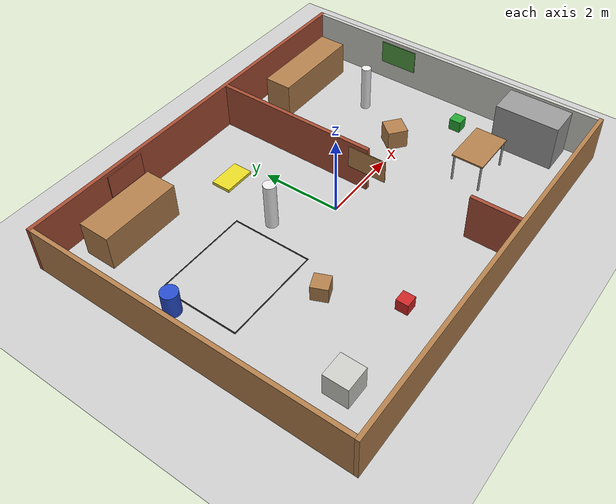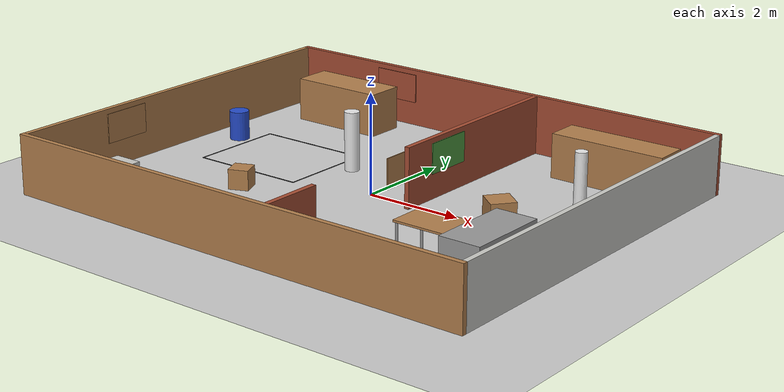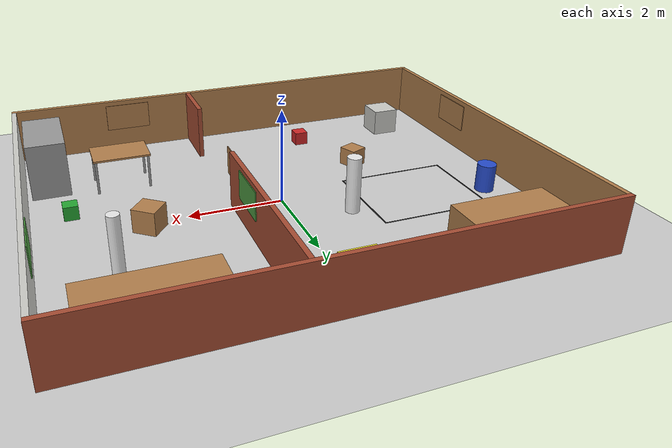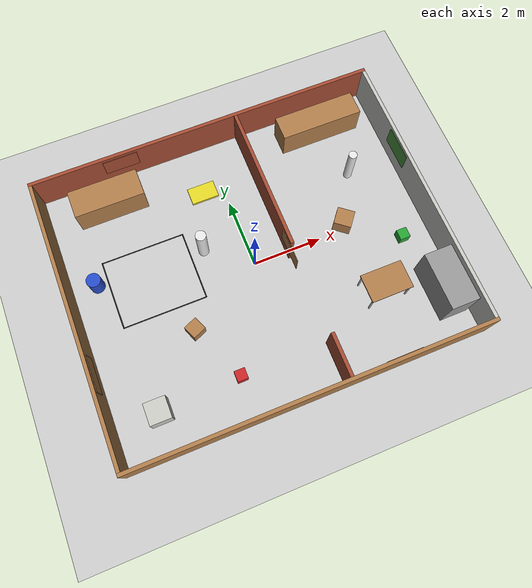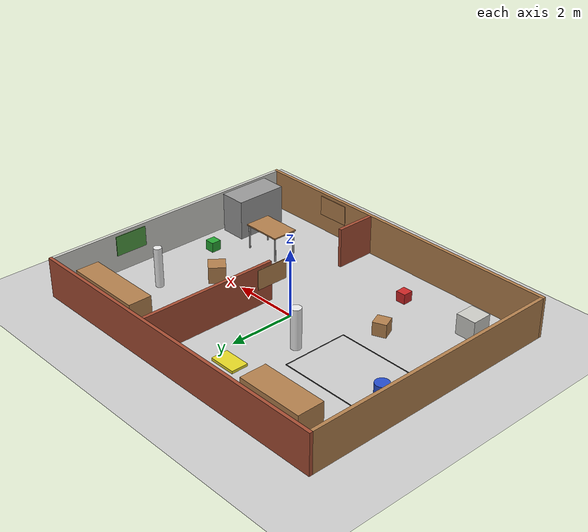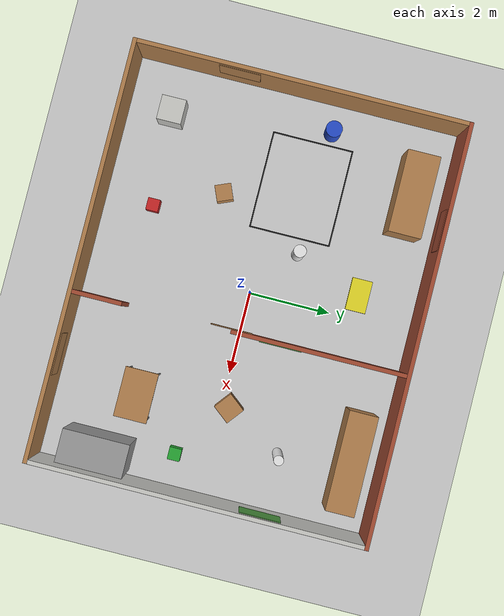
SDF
<?xml version="1.0"?>
<!-- tc70045e_lab - generated for the TC70045E lab robot (Gazebo Classic 11). Self-contained: no model downloads needed. -->
<sdf version="1.6">
  <world name="tc70045e_lab">
    <light type="directional" name="sun">
      <cast_shadows>false</cast_shadows>
      <pose>0 0 10 0 0 0</pose>
      <diffuse>0.8 0.8 0.8 1</diffuse>
      <specular>0.2 0.2 0.2 1</specular>
      <direction>-0.5 0.1 -0.9</direction>
    </light>
    <model name="ground_plane">
      <static>true</static>
      <link name="link">
        <collision name="collision">
          <geometry><plane><normal>0 0 1</normal><size>100 100</size></plane></geometry>
          <surface><friction><ode><mu>100</mu><mu2>50</mu2></ode></friction></surface>
        </collision>
        <visual name="visual">
          <cast_shadows>false</cast_shadows>
          <geometry><plane><normal>0 0 1</normal><size>100 100</size></plane></geometry>
          <material><script><uri>file://media/materials/scripts/gazebo.material</uri><name>Gazebo/Grey</name></script></material>
        </visual>
      </link>
    </model>
    <physics type="ode">
      <max_step_size>0.001</max_step_size>
      <real_time_factor>1</real_time_factor>
      <real_time_update_rate>1000</real_time_update_rate>
    </physics>
    <gui fullscreen="0">
      <camera name="user_camera">
        <pose>0 -7.2 7.8 0 0.8117 1.5708</pose>   <!-- both rooms from above the south wall -->
      </camera>
    </gui>
    <scene><shadows>false</shadows><ambient>0.6 0.6 0.6 1</ambient><background>0.7 0.8 0.9 1</background></scene>
    <model name="wall_north"><static>true</static><pose>0 4.05 0.6 0 0 0.0</pose>
      <link name="l"><collision name="c"><geometry><box><size>10.2 0.1 1.2</size></box></geometry></collision>
        <visual name="v"><geometry><box><size>10.2 0.1 1.2</size></box></geometry>
          <material><script><uri>file://media/materials/scripts/gazebo.material</uri><name>Gazebo/Bricks</name></script></material></visual>
      </link></model>
    <model name="wall_south"><static>true</static><pose>0 -4.05 0.6 0 0 0.0</pose>
      <link name="l"><collision name="c"><geometry><box><size>10.2 0.1 1.2</size></box></geometry></collision>
        <visual name="v"><geometry><box><size>10.2 0.1 1.2</size></box></geometry>
          <material><script><uri>file://media/materials/scripts/gazebo.material</uri><name>Gazebo/WoodPallet</name></script></material></visual>
      </link></model>
    <model name="wall_east"><static>true</static><pose>5.05 0 0.6 0 0 0.0</pose>
      <link name="l"><collision name="c"><geometry><box><size>0.1 8.0 1.2</size></box></geometry></collision>
        <visual name="v"><geometry><box><size>0.1 8.0 1.2</size></box></geometry>
          <material><script><uri>file://media/materials/scripts/gazebo.material</uri><name>Gazebo/CeilingTiled</name></script></material></visual>
      </link></model>
    <model name="wall_west"><static>true</static><pose>-5.05 0 0.6 0 0 0.0</pose>
      <link name="l"><collision name="c"><geometry><box><size>0.1 8.0 1.2</size></box></geometry></collision>
        <visual name="v"><geometry><box><size>0.1 8.0 1.2</size></box></geometry>
          <material><script><uri>file://media/materials/scripts/gazebo.material</uri><name>Gazebo/Wood</name></script></material></visual>
      </link></model>
    <model name="partition_a"><static>true</static><pose>1.0 1.9 0.6 0 0 0.0</pose>
      <link name="l"><collision name="c"><geometry><box><size>0.1 4.2 1.2</size></box></geometry></collision>
        <visual name="v"><geometry><box><size>0.1 4.2 1.2</size></box></geometry>
          <material><script><uri>file://media/materials/scripts/gazebo.material</uri><name>Gazebo/Bricks</name></script></material></visual>
      </link></model>
    <model name="partition_b"><static>true</static><pose>1.0 -3.4 0.6 0 0 0.0</pose>
      <link name="l"><collision name="c"><geometry><box><size>0.1 1.2 1.2</size></box></geometry></collision>
        <visual name="v"><geometry><box><size>0.1 1.2 1.2</size></box></geometry>
          <material><script><uri>file://media/materials/scripts/gazebo.material</uri><name>Gazebo/Bricks</name></script></material></visual>
      </link></model>
    <model name="bench_1"><static>true</static><pose>-3.2 3.2 0.45 0 0 0.0</pose>
      <link name="l"><collision name="c"><geometry><box><size>2.0 0.8 0.9</size></box></geometry></collision>
        <visual name="v"><geometry><box><size>2.0 0.8 0.9</size></box></geometry>
          <material><script><uri>file://media/materials/scripts/gazebo.material</uri><name>Gazebo/WoodPallet</name></script></material></visual>
      </link></model>
    <model name="bench_2"><static>true</static><pose>3.3 3.3 0.45 0 0 0.0</pose>
      <link name="l"><collision name="c"><geometry><box><size>2.4 0.7 0.9</size></box></geometry></collision>
        <visual name="v"><geometry><box><size>2.4 0.7 0.9</size></box></geometry>
          <material><script><uri>file://media/materials/scripts/gazebo.material</uri><name>Gazebo/Wood</name></script></material></visual>
      </link></model>
    <model name="cabinet"><static>true</static><pose>4.5 -2.6 0.6 0 0 0.0</pose>
      <link name="l"><collision name="c"><geometry><box><size>0.8 1.6 1.2</size></box></geometry></collision>
        <visual name="v"><geometry><box><size>0.8 1.6 1.2</size></box></geometry>
          <material><script><uri>file://media/materials/scripts/gazebo.material</uri><name>Gazebo/Grey</name></script></material></visual>
      </link></model>
    <model name="crate_1"><static>true</static><pose>-2.2 -1.2 0.2 0 0 0.4</pose>
      <link name="l"><collision name="c"><geometry><box><size>0.4 0.4 0.4</size></box></geometry></collision>
        <visual name="v"><geometry><box><size>0.4 0.4 0.4</size></box></geometry>
          <material><script><uri>file://media/materials/scripts/gazebo.material</uri><name>Gazebo/WoodPallet</name></script></material></visual>
      </link></model>
    <model name="crate_2"><static>true</static><pose>2.8 0.2 0.25 0 0 0.9</pose>
      <link name="l"><collision name="c"><geometry><box><size>0.5 0.5 0.5</size></box></geometry></collision>
        <visual name="v"><geometry><box><size>0.5 0.5 0.5</size></box></geometry>
          <material><script><uri>file://media/materials/scripts/gazebo.material</uri><name>Gazebo/Wood</name></script></material></visual>
      </link></model>
    <model name="crate_3"><static>true</static><pose>-3.8 -2.9 0.3 0 0 0.0</pose>
      <link name="l"><collision name="c"><geometry><box><size>0.6 0.6 0.6</size></box></geometry></collision>
        <visual name="v"><geometry><box><size>0.6 0.6 0.6</size></box></geometry>
          <material><script><uri>file://media/materials/scripts/gazebo.material</uri><name>Gazebo/CeilingTiled</name></script></material></visual>
      </link></model>
    <model name="low_step"><static>true</static><pose>-0.6 2.6 0.04 0 0 0.0</pose>
      <link name="l"><collision name="c"><geometry><box><size>0.8 0.5 0.08</size></box></geometry></collision>
        <visual name="v"><geometry><box><size>0.8 0.5 0.08</size></box></geometry>
          <material><script><uri>file://media/materials/scripts/gazebo.material</uri><name>Gazebo/Yellow</name></script></material></visual>
      </link></model>
    <model name="table_top"><static>true</static><pose>3.0 -2.0 0.75 0 0 0.0</pose>
      <link name="l"><collision name="c"><geometry><box><size>1.2 0.8 0.04</size></box></geometry></collision>
        <visual name="v"><geometry><box><size>1.2 0.8 0.04</size></box></geometry>
          <material><script><uri>file://media/materials/scripts/gazebo.material</uri><name>Gazebo/Wood</name></script></material></visual>
      </link></model>
    <model name="table_leg_0"><static>true</static><pose>2.45 -2.35 0.365 0 0 0</pose>
      <link name="l"><collision name="c"><geometry><cylinder><radius>0.025</radius><length>0.73</length></cylinder></geometry></collision>
        <visual name="v"><geometry><cylinder><radius>0.025</radius><length>0.73</length></cylinder></geometry>
          <material><script><uri>file://media/materials/scripts/gazebo.material</uri><name>Gazebo/Grey</name></script></material></visual>
      </link></model>
    <model name="table_leg_1"><static>true</static><pose>3.55 -2.35 0.365 0 0 0</pose>
      <link name="l"><collision name="c"><geometry><cylinder><radius>0.025</radius><length>0.73</length></cylinder></geometry></collision>
        <visual name="v"><geometry><cylinder><radius>0.025</radius><length>0.73</length></cylinder></geometry>
          <material><script><uri>file://media/materials/scripts/gazebo.material</uri><name>Gazebo/Grey</name></script></material></visual>
      </link></model>
    <model name="table_leg_2"><static>true</static><pose>2.45 -1.65 0.365 0 0 0</pose>
      <link name="l"><collision name="c"><geometry><cylinder><radius>0.025</radius><length>0.73</length></cylinder></geometry></collision>
        <visual name="v"><geometry><cylinder><radius>0.025</radius><length>0.73</length></cylinder></geometry>
          <material><script><uri>file://media/materials/scripts/gazebo.material</uri><name>Gazebo/Grey</name></script></material></visual>
      </link></model>
    <model name="table_leg_3"><static>true</static><pose>3.55 -1.65 0.365 0 0 0</pose>
      <link name="l"><collision name="c"><geometry><cylinder><radius>0.025</radius><length>0.73</length></cylinder></geometry></collision>
        <visual name="v"><geometry><cylinder><radius>0.025</radius><length>0.73</length></cylinder></geometry>
          <material><script><uri>file://media/materials/scripts/gazebo.material</uri><name>Gazebo/Grey</name></script></material></visual>
      </link></model>
    <model name="pillar_1"><static>true</static><pose>-1.2 0.9 0.6 0 0 0</pose>
      <link name="l"><collision name="c"><geometry><cylinder><radius>0.15</radius><length>1.2</length></cylinder></geometry></collision>
        <visual name="v"><geometry><cylinder><radius>0.15</radius><length>1.2</length></cylinder></geometry>
          <material><script><uri>file://media/materials/scripts/gazebo.material</uri><name>Gazebo/White</name></script></material></visual>
      </link></model>
    <model name="pillar_2"><static>true</static><pose>3.6 1.6 0.6 0 0 0</pose>
      <link name="l"><collision name="c"><geometry><cylinder><radius>0.12</radius><length>1.2</length></cylinder></geometry></collision>
        <visual name="v"><geometry><cylinder><radius>0.12</radius><length>1.2</length></cylinder></geometry>
          <material><script><uri>file://media/materials/scripts/gazebo.material</uri><name>Gazebo/White</name></script></material></visual>
      </link></model>
    <model name="bin"><static>true</static><pose>-4.3 1.0 0.3 0 0 0</pose>
      <link name="l"><collision name="c"><geometry><cylinder><radius>0.2</radius><length>0.6</length></cylinder></geometry></collision>
        <visual name="v"><geometry><cylinder><radius>0.2</radius><length>0.6</length></cylinder></geometry>
          <material><script><uri>file://media/materials/scripts/gazebo.material</uri><name>Gazebo/Blue</name></script></material></visual>
      </link></model>
    <model name="poster_0"><static>true</static><pose>-2.5 3.99 0.8 0 0 0</pose>
      <link name="l">
        <visual name="v"><geometry><box><size>1.0 0.02 0.6</size></box></geometry>
          <material><script><uri>file://media/materials/scripts/gazebo.material</uri><name>Gazebo/Bricks</name></script></material></visual>
      </link></model>
    <model name="poster_1"><static>true</static><pose>2.5 -3.99 0.8 0 0 0</pose>
      <link name="l">
        <visual name="v"><geometry><box><size>1.0 0.02 0.6</size></box></geometry>
          <material><script><uri>file://media/materials/scripts/gazebo.material</uri><name>Gazebo/WoodFloor</name></script></material></visual>
      </link></model>
    <model name="poster_2"><static>true</static><pose>4.99 1.5 0.8 0 0 1.5708</pose>
      <link name="l">
        <visual name="v"><geometry><box><size>1.0 0.02 0.6</size></box></geometry>
          <material><script><uri>file://media/materials/scripts/gazebo.material</uri><name>Gazebo/Grass</name></script></material></visual>
      </link></model>
    <model name="poster_3"><static>true</static><pose>-4.99 -1.5 0.8 0 0 1.5708</pose>
      <link name="l">
        <visual name="v"><geometry><box><size>1.0 0.02 0.6</size></box></geometry>
          <material><script><uri>file://media/materials/scripts/gazebo.material</uri><name>Gazebo/WoodFloor</name></script></material></visual>
      </link></model>
    <model name="poster_4"><static>true</static><pose>1.06 1.0 0.8 0 0 1.5708</pose>
      <link name="l">
        <visual name="v"><geometry><box><size>1.0 0.02 0.6</size></box></geometry>
          <material><script><uri>file://media/materials/scripts/gazebo.material</uri><name>Gazebo/Grass</name></script></material></visual>
      </link></model>
    <model name="poster_5"><static>true</static><pose>0.94 -0.2 0.8 0 0 1.5708</pose>
      <link name="l">
        <visual name="v"><geometry><box><size>1.0 0.02 0.6</size></box></geometry>
          <material><script><uri>file://media/materials/scripts/gazebo.material</uri><name>Gazebo/WoodFloor</name></script></material></visual>
      </link></model>
    <model name="red_box"><static>true</static><pose>-1.5 -2.8 0.15 0 0 0.0</pose>
      <link name="l"><collision name="c"><geometry><box><size>0.3 0.3 0.3</size></box></geometry></collision>
        <visual name="v"><geometry><box><size>0.3 0.3 0.3</size></box></geometry>
          <material><script><uri>file://media/materials/scripts/gazebo.material</uri><name>Gazebo/Red</name></script></material></visual>
      </link></model>
    <model name="green_box"><static>true</static><pose>4.2 -0.8 0.15 0 0 0.0</pose>
      <link name="l"><collision name="c"><geometry><box><size>0.3 0.3 0.3</size></box></geometry></collision>
        <visual name="v"><geometry><box><size>0.3 0.3 0.3</size></box></geometry>
          <material><script><uri>file://media/materials/scripts/gazebo.material</uri><name>Gazebo/Green</name></script></material></visual>
      </link></model>
    <model name="line_0"><static>true</static><pose>-2.8 -0.4 0.001 0 0 0.0</pose>
      <link name="l">
        <visual name="v"><geometry><box><size>2.4299999999999997 0.03 0.002</size></box></geometry>
          <material><script><uri>file://media/materials/scripts/gazebo.material</uri><name>Gazebo/Black</name></script></material></visual>
      </link></model>
    <model name="line_1"><static>true</static><pose>-1.6 0.6000000000000001 0.001 0 0 1.5707963267948966</pose>
      <link name="l">
        <visual name="v"><geometry><box><size>2.03 0.03 0.002</size></box></geometry>
          <material><script><uri>file://media/materials/scripts/gazebo.material</uri><name>Gazebo/Black</name></script></material></visual>
      </link></model>
    <model name="line_2"><static>true</static><pose>-2.8 1.6 0.001 0 0 3.141592653589793</pose>
      <link name="l">
        <visual name="v"><geometry><box><size>2.4299999999999997 0.03 0.002</size></box></geometry>
          <material><script><uri>file://media/materials/scripts/gazebo.material</uri><name>Gazebo/Black</name></script></material></visual>
      </link></model>
    <model name="line_3"><static>true</static><pose>-4.0 0.6000000000000001 0.001 0 0 -1.5707963267948966</pose>
      <link name="l">
        <visual name="v"><geometry><box><size>2.03 0.03 0.002</size></box></geometry>
          <material><script><uri>file://media/materials/scripts/gazebo.material</uri><name>Gazebo/Black</name></script></material></visual>
      </link></model>
  </world>
</sdf>
